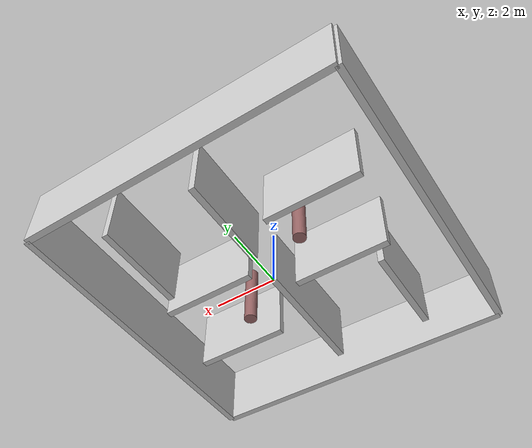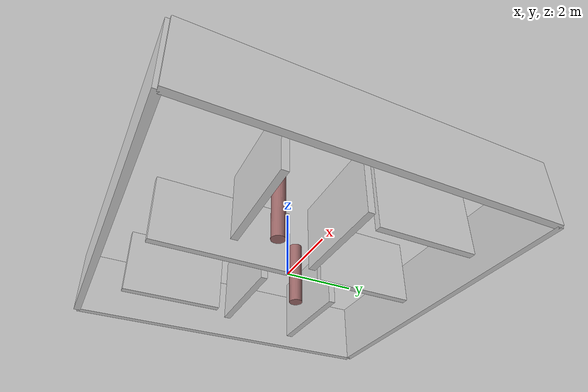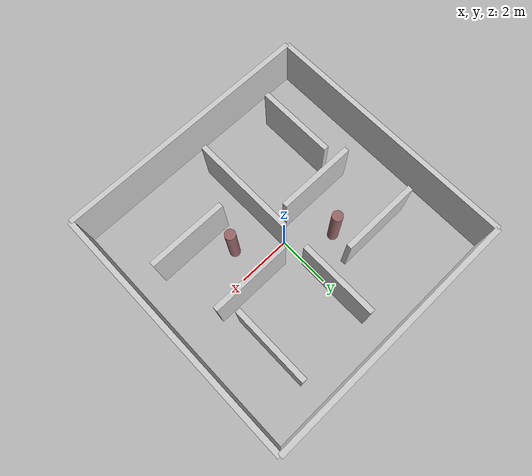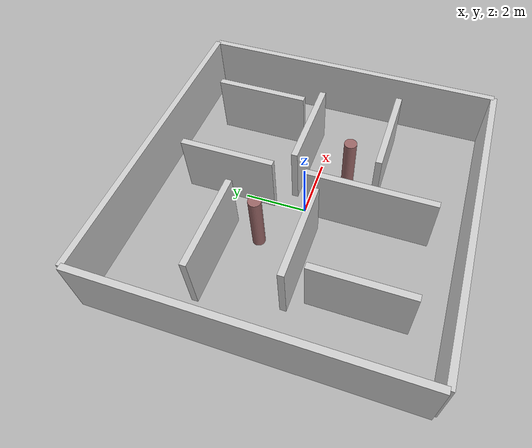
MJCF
<mujoco model="simple_maze">
  <compiler angle="radian" coordinate="local"/>

  <option timestep="0.01" gravity="0 0 -9.81"/>

  <default>
    <geom type="box" rgba="0.8 0.8 0.8 1" friction="1 0.005 0.0001"/>
  </default>

  <asset>
    <texture name="wall_texture" type="2d" builtin="checker" rgb1="0.7 0.7 0.7" rgb2="0.6 0.6 0.6" width="300" height="300"/>
    <material name="wall_material" texture="wall_texture" texrepeat="3 3"/>
  </asset>

  <worldbody>
    <!-- Ground plane (already added in Genesis, this is just for reference) -->

    <!-- Outer boundary walls (10m x 10m arena) -->
    <body name="north_wall" pos="0 5 1">
      <geom name="wall_north" type="box" size="5 0.1 1" material="wall_material"/>
    </body>

    <body name="south_wall" pos="0 -5 1">
      <geom name="wall_south" type="box" size="5 0.1 1" material="wall_material"/>
    </body>

    <body name="east_wall" pos="5 0 1">
      <geom name="wall_east" type="box" size="0.1 5 1" material="wall_material"/>
    </body>

    <body name="west_wall" pos="-5 0 1">
      <geom name="wall_west" type="box" size="0.1 5 1" material="wall_material"/>
    </body>

    <!-- Internal maze walls to create corridors -->

    <!-- Central vertical divider with gap -->
    <body name="divider_1" pos="0 -2 1">
      <geom name="div_1" type="box" size="0.1 2 1" material="wall_material"/>
    </body>

    <body name="divider_2" pos="0 2.5 1">
      <geom name="div_2" type="box" size="0.1 1.5 1" material="wall_material"/>
    </body>

    <!-- Horizontal walls to create T-junctions and turns -->
    <body name="h_wall_1" pos="-2.5 2 1">
      <geom name="hw_1" type="box" size="1.5 0.1 1" material="wall_material"/>
    </body>

    <body name="h_wall_2" pos="2.5 -2 1">
      <geom name="hw_2" type="box" size="1.5 0.1 1" material="wall_material"/>
    </body>

    <body name="h_wall_3" pos="-2 -0.5 1">
      <geom name="hw_3" type="box" size="1.5 0.1 1" material="wall_material"/>
    </body>

    <body name="h_wall_4" pos="2 0.5 1">
      <geom name="hw_4" type="box" size="1.5 0.1 1" material="wall_material"/>
    </body>

    <!-- Additional vertical segments for complexity -->
    <body name="v_wall_1" pos="-3 -2.5 1">
      <geom name="vw_1" type="box" size="0.1 1.5 1" material="wall_material"/>
    </body>

    <body name="v_wall_2" pos="3 2.5 1">
      <geom name="vw_2" type="box" size="0.1 1.5 1" material="wall_material"/>
    </body>

    <!-- Some obstacles/pillars -->
    <body name="pillar_1" pos="-1.5 1 1">
      <geom name="p_1" type="cylinder" size="0.2 1" rgba="0.6 0.4 0.4 1"/>
    </body>

    <body name="pillar_2" pos="1.5 -1 1">
      <geom name="p_2" type="cylinder" size="0.2 1" rgba="0.6 0.4 0.4 1"/>
    </body>

  </worldbody>
</mujoco>
